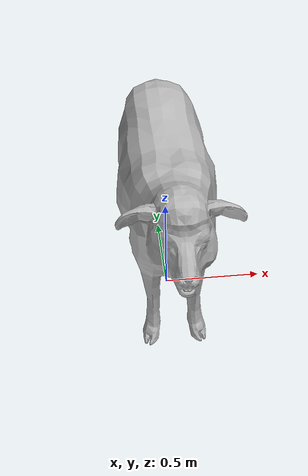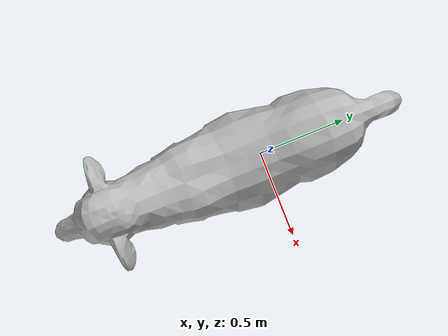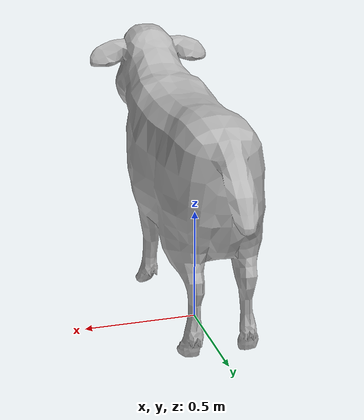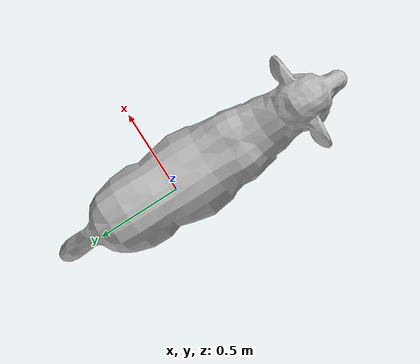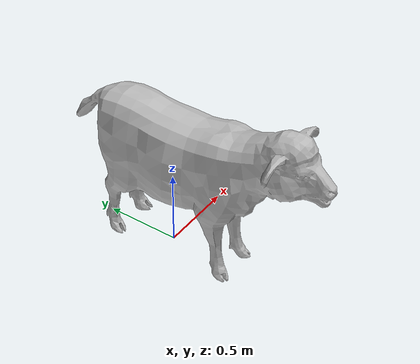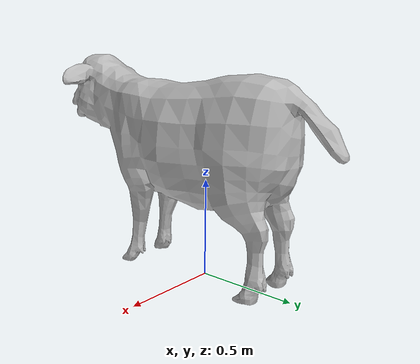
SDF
<sdf version="1.9">
    <model name="sheep">
      <static>true</static>
      <link name="link">
        <visual name="visual">
          <geometry>
            <mesh>
              <uri>model://sheep/meshes/sheep.dae</uri>
              <scale>7 7 7</scale>
            </mesh>
          </geometry>
        </visual>
        <collision name="collision">
          <geometry>
            <mesh>
              <uri>model://sheep/meshes/sheep.dae</uri>
              <scale>7 7 7</scale>
            </mesh>
          </geometry>
        </collision>
      </link>
    </model>
</sdf>
